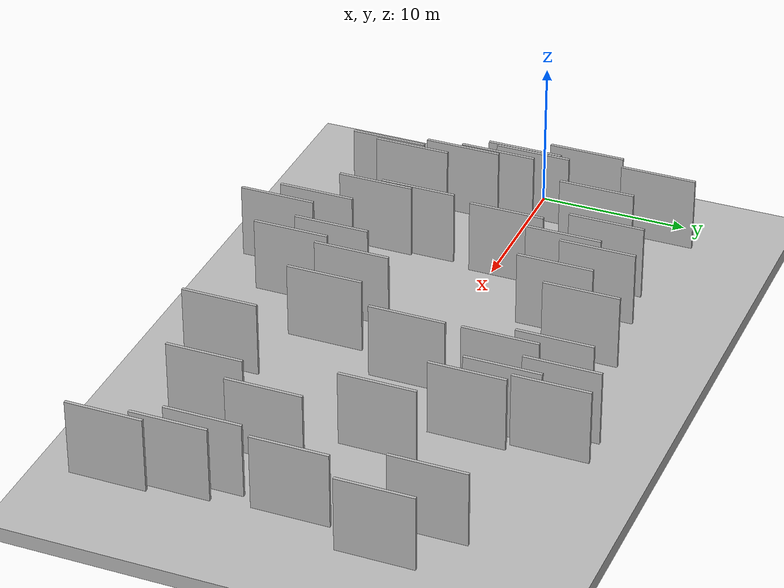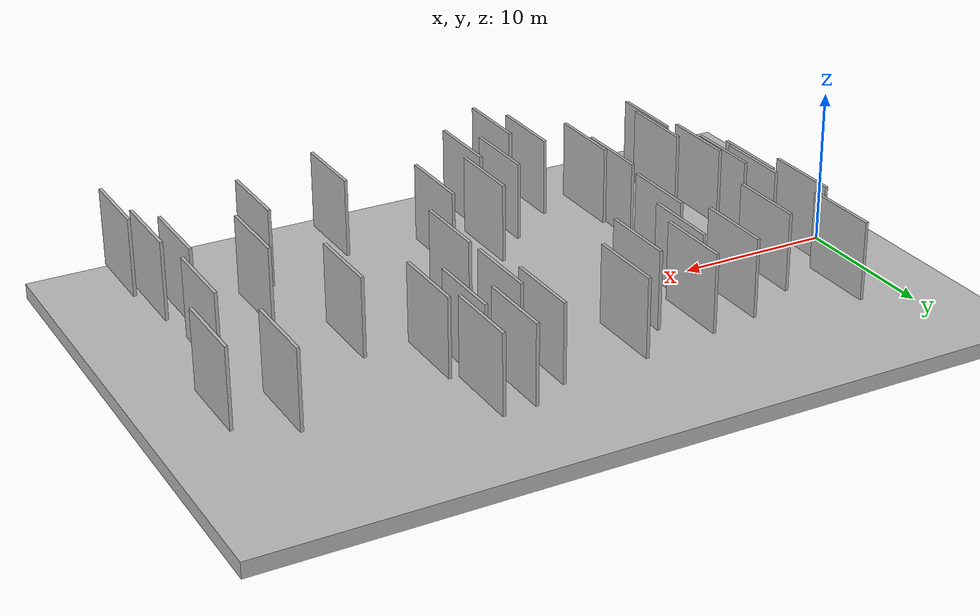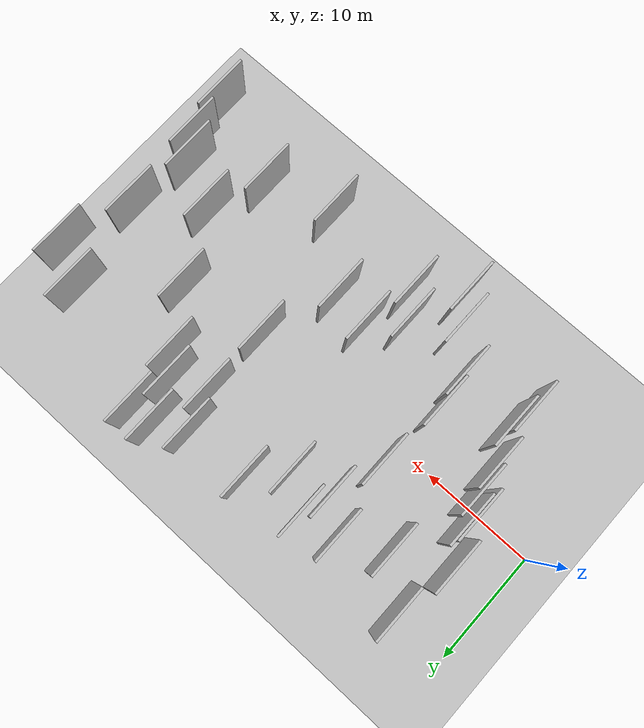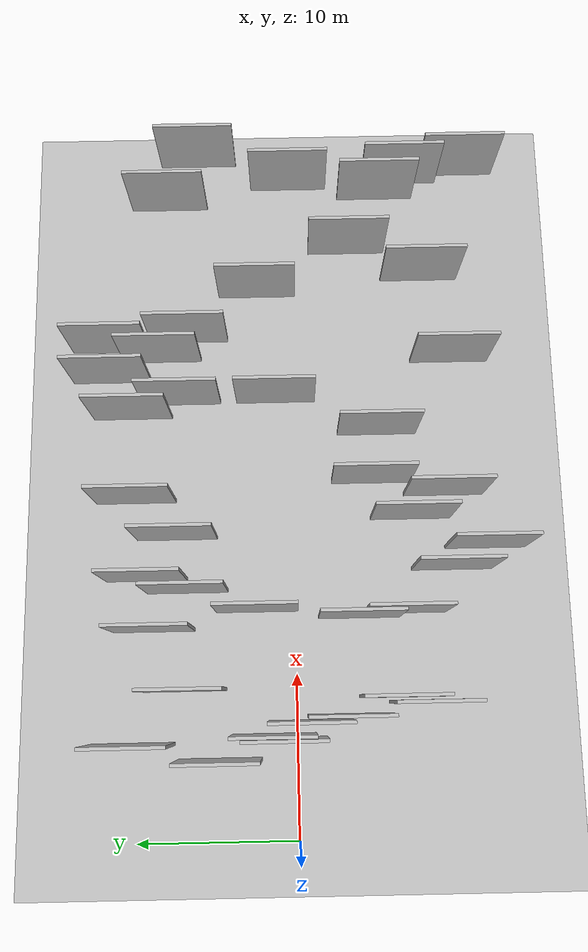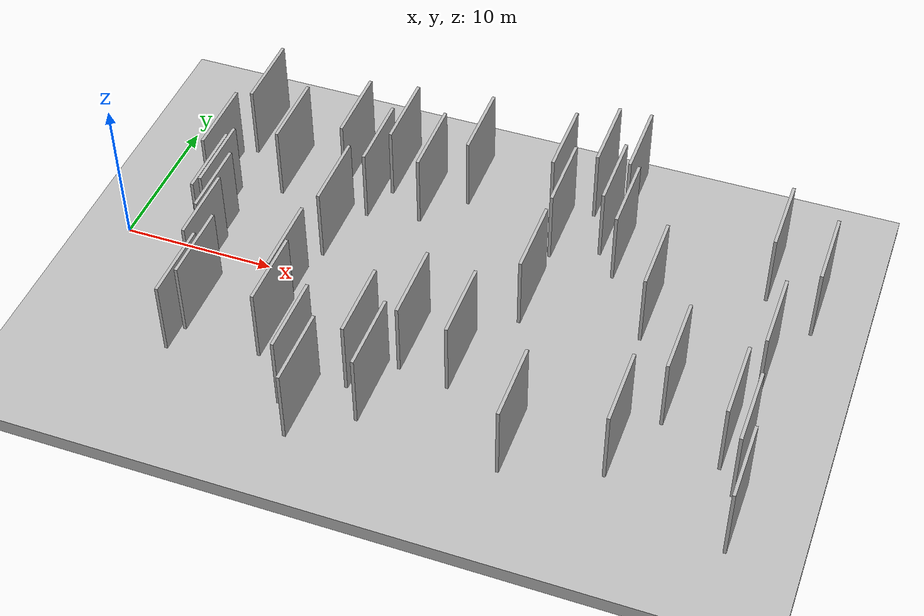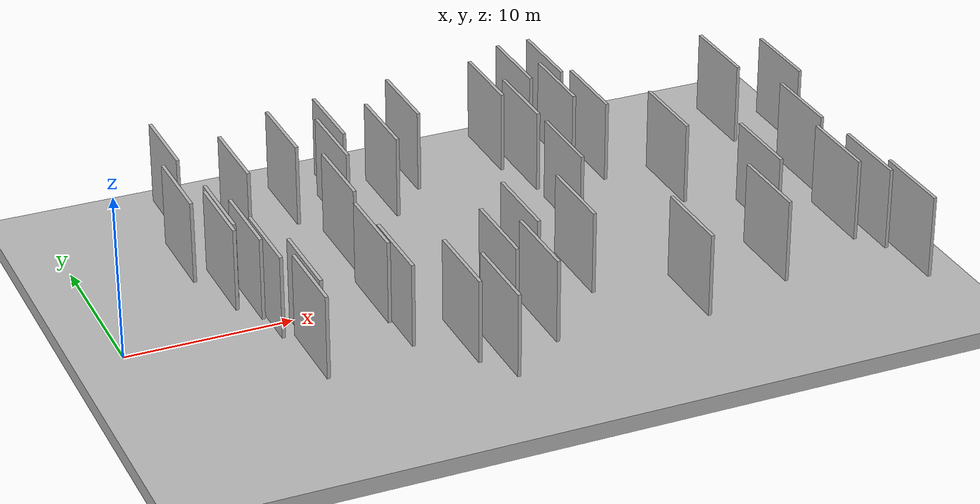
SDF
<?xml version="1.0" encoding="utf-8"?>

<sdf version="1.6">

   <world name="default">

      <gui fullscreen="0">

         <camera name="user_camera">

            <pose>-15 0 4.57585 0 0 0</pose>

            <view_controller>orbit</view_controller>

         </camera>

      </gui>

      <scene>

         <sky>

           <clouds>

             <speed>12</speed>

           </clouds>

         </sky>

         <ambient>0.4 0.4 0.4 1</ambient>

         <background>0.7 0.7 0.7 1</background>

         <shadows>1</shadows>

      </scene>

      <gravity>0 0 -9.8066</gravity>

      <magnetic_field>6e-06 2.3e-05 -4.2e-05</magnetic_field>

      <physics default="0" name="default_physics" type="ode">

         <ode>

            <solver>

               <type>quick</type>

               <iters>10</iters>

               <sor>1.0</sor>

               <use_dynamic_moi_rescaling>0</use_dynamic_moi_rescaling>

            </solver>

            <constraints>

               <cfm>0</cfm>

               <erp>0.2</erp>

               <contact_max_correcting_vel>100</contact_max_correcting_vel>

               <contact_surface_layer>0.001</contact_surface_layer>

            </constraints>

         </ode>

         <max_step_size>0.004</max_step_size>

         <real_time_factor>1</real_time_factor>

         <real_time_update_rate>250</real_time_update_rate>

      </physics>

      <light name="sun" type="directional">

         <cast_shadows>1</cast_shadows>

         <pose>0 0 10 0 0 0</pose>

         <diffuse>0.8 0.8 0.8 1</diffuse>

         <specular>0.2 0.2 0.2 1</specular>

         <attenuation>

            <range>1000</range>

            <constant>0.9</constant>

            <linear>0.01</linear>

            <quadratic>0.001</quadratic>

         </attenuation>

         <direction>-0.5 0.1 -0.9</direction>

      </light>

      <include>

         <name>ground_plane_1</name>

         <uri>model://HANNAS_ground_plane</uri>

         <pose>0 0 0  0 0 0</pose>

      </include>

      <include>

         <name>ground_plane_2</name>

         <uri>model://HANNAS_ground_plane</uri>

         <pose>100 0 0  0 0 0</pose>

      </include>

      <model name="HANNAS_wall_1">

         <static>1</static>

         <pose frame="">27.2792 1.0610 2.5 0.000000 0.000000 1.570796</pose>

         <link name="link">

            <pose frame="">0 0 2.50 0 0 0</pose>

            <collision name="collision">

               <geometry>

                  <box>

                     <size>5.00 0.2 5.00</size>

                  </box>

               </geometry>

               <max_contacts>10</max_contacts>

               <surface>

                  <contact>

                     <ode/>

                  </contact>

                  <bounce/>

                  <friction>

                     <torsional>

                        <ode/>

                     </torsional>

                     <ode/>

                  </friction>

               </surface>

            </collision>

            <visual name="visual">

               <cast_shadows>0</cast_shadows>

               <geometry>

                  <box>

                     <size>5.00 0.2 5.00</size>

                  </box>

               </geometry>

               <material>

                  <script>

                     <uri>model://HANNAS_wall/materials/scripts</uri>

                     <uri>model://HANNAS_wall/materials/textures</uri>

                     <name>vrc/HANNAS_wall</name>

                  </script>

               </material>

            </visual>

            <self_collide>0</self_collide>

            <enable_wind>0</enable_wind>

            <kinematic>0</kinematic>

         </link>

      </model>

      <model name="HANNAS_wall_2">

         <static>1</static>

         <pose frame="">43.1427 -11.2460 2.5 0.000000 0.000000 1.570796</pose>

         <link name="link">

            <pose frame="">0 0 2.50 0 0 0</pose>

            <collision name="collision">

               <geometry>

                  <box>

                     <size>5.00 0.2 5.00</size>

                  </box>

               </geometry>

               <max_contacts>10</max_contacts>

               <surface>

                  <contact>

                     <ode/>

                  </contact>

                  <bounce/>

                  <friction>

                     <torsional>

                        <ode/>

                     </torsional>

                     <ode/>

                  </friction>

               </surface>

            </collision>

            <visual name="visual">

               <cast_shadows>0</cast_shadows>

               <geometry>

                  <box>

                     <size>5.00 0.2 5.00</size>

                  </box>

               </geometry>

               <material>

                  <script>

                     <uri>model://HANNAS_wall/materials/scripts</uri>

                     <uri>model://HANNAS_wall/materials/textures</uri>

                     <name>vrc/HANNAS_wall</name>

                  </script>

               </material>

            </visual>

            <self_collide>0</self_collide>

            <enable_wind>0</enable_wind>

            <kinematic>0</kinematic>

         </link>

      </model>

      <model name="HANNAS_wall_3">

         <static>1</static>

         <pose frame="">31.4791 6.6042 2.5 0.000000 0.000000 1.570796</pose>

         <link name="link">

            <pose frame="">0 0 2.50 0 0 0</pose>

            <collision name="collision">

               <geometry>

                  <box>

                     <size>5.00 0.2 5.00</size>

                  </box>

               </geometry>

               <max_contacts>10</max_contacts>

               <surface>

                  <contact>

                     <ode/>

                  </contact>

                  <bounce/>

                  <friction>

                     <torsional>

                        <ode/>

                     </torsional>

                     <ode/>

                  </friction>

               </surface>

            </collision>

            <visual name="visual">

               <cast_shadows>0</cast_shadows>

               <geometry>

                  <box>

                     <size>5.00 0.2 5.00</size>

                  </box>

               </geometry>

               <material>

                  <script>

                     <uri>model://HANNAS_wall/materials/scripts</uri>

                     <uri>model://HANNAS_wall/materials/textures</uri>

                     <name>vrc/HANNAS_wall</name>

                  </script>

               </material>

            </visual>

            <self_collide>0</self_collide>

            <enable_wind>0</enable_wind>

            <kinematic>0</kinematic>

         </link>

      </model>

      <model name="HANNAS_wall_4">

         <static>1</static>

         <pose frame="">30.8617 11.6335 2.5 0.000000 0.000000 1.570796</pose>

         <link name="link">

            <pose frame="">0 0 2.50 0 0 0</pose>

            <collision name="collision">

               <geometry>

                  <box>

                     <size>5.00 0.2 5.00</size>

                  </box>

               </geometry>

               <max_contacts>10</max_contacts>

               <surface>

                  <contact>

                     <ode/>

                  </contact>

                  <bounce/>

                  <friction>

                     <torsional>

                        <ode/>

                     </torsional>

                     <ode/>

                  </friction>

               </surface>

            </collision>

            <visual name="visual">

               <cast_shadows>0</cast_shadows>

               <geometry>

                  <box>

                     <size>5.00 0.2 5.00</size>

                  </box>

               </geometry>

               <material>

                  <script>

                     <uri>model://HANNAS_wall/materials/scripts</uri>

                     <uri>model://HANNAS_wall/materials/textures</uri>

                     <name>vrc/HANNAS_wall</name>

                  </script>

               </material>

            </visual>

            <self_collide>0</self_collide>

            <enable_wind>0</enable_wind>

            <kinematic>0</kinematic>

         </link>

      </model>

      <model name="HANNAS_wall_5">

         <static>1</static>

         <pose frame="">44.0662 6.0179 2.5 0.000000 0.000000 1.570796</pose>

         <link name="link">

            <pose frame="">0 0 2.50 0 0 0</pose>

            <collision name="collision">

               <geometry>

                  <box>

                     <size>5.00 0.2 5.00</size>

                  </box>

               </geometry>

               <max_contacts>10</max_contacts>

               <surface>

                  <contact>

                     <ode/>

                  </contact>

                  <bounce/>

                  <friction>

                     <torsional>

                        <ode/>

                     </torsional>

                     <ode/>

                  </friction>

               </surface>

            </collision>

            <visual name="visual">

               <cast_shadows>0</cast_shadows>

               <geometry>

                  <box>

                     <size>5.00 0.2 5.00</size>

                  </box>

               </geometry>

               <material>

                  <script>

                     <uri>model://HANNAS_wall/materials/scripts</uri>

                     <uri>model://HANNAS_wall/materials/textures</uri>

                     <name>vrc/HANNAS_wall</name>

                  </script>

               </material>

            </visual>

            <self_collide>0</self_collide>

            <enable_wind>0</enable_wind>

            <kinematic>0</kinematic>

         </link>

      </model>

      <model name="HANNAS_wall_6">

         <static>1</static>

         <pose frame="">7.1622 -0.7424 2.5 0.000000 0.000000 1.570796</pose>

         <link name="link">

            <pose frame="">0 0 2.50 0 0 0</pose>

            <collision name="collision">

               <geometry>

                  <box>

                     <size>5.00 0.2 5.00</size>

                  </box>

               </geometry>

               <max_contacts>10</max_contacts>

               <surface>

                  <contact>

                     <ode/>

                  </contact>

                  <bounce/>

                  <friction>

                     <torsional>

                        <ode/>

                     </torsional>

                     <ode/>

                  </friction>

               </surface>

            </collision>

            <visual name="visual">

               <cast_shadows>0</cast_shadows>

               <geometry>

                  <box>

                     <size>5.00 0.2 5.00</size>

                  </box>

               </geometry>

               <material>

                  <script>

                     <uri>model://HANNAS_wall/materials/scripts</uri>

                     <uri>model://HANNAS_wall/materials/textures</uri>

                     <name>vrc/HANNAS_wall</name>

                  </script>

               </material>

            </visual>

            <self_collide>0</self_collide>

            <enable_wind>0</enable_wind>

            <kinematic>0</kinematic>

         </link>

      </model>

      <model name="HANNAS_wall_7">

         <static>1</static>

         <pose frame="">7.4784 -3.0683 2.5 0.000000 0.000000 1.570796</pose>

         <link name="link">

            <pose frame="">0 0 2.50 0 0 0</pose>

            <collision name="collision">

               <geometry>

                  <box>

                     <size>5.00 0.2 5.00</size>

                  </box>

               </geometry>

               <max_contacts>10</max_contacts>

               <surface>

                  <contact>

                     <ode/>

                  </contact>

                  <bounce/>

                  <friction>

                     <torsional>

                        <ode/>

                     </torsional>

                     <ode/>

                  </friction>

               </surface>

            </collision>

            <visual name="visual">

               <cast_shadows>0</cast_shadows>

               <geometry>

                  <box>

                     <size>5.00 0.2 5.00</size>

                  </box>

               </geometry>

               <material>

                  <script>

                     <uri>model://HANNAS_wall/materials/scripts</uri>

                     <uri>model://HANNAS_wall/materials/textures</uri>

                     <name>vrc/HANNAS_wall</name>

                  </script>

               </material>

            </visual>

            <self_collide>0</self_collide>

            <enable_wind>0</enable_wind>

            <kinematic>0</kinematic>

         </link>

      </model>

      <model name="HANNAS_wall_8">

         <static>1</static>

         <pose frame="">6.0004 9.8818 2.5 0.000000 0.000000 1.570796</pose>

         <link name="link">

            <pose frame="">0 0 2.50 0 0 0</pose>

            <collision name="collision">

               <geometry>

                  <box>

                     <size>5.00 0.2 5.00</size>

                  </box>

               </geometry>

               <max_contacts>10</max_contacts>

               <surface>

                  <contact>

                     <ode/>

                  </contact>

                  <bounce/>

                  <friction>

                     <torsional>

                        <ode/>

                     </torsional>

                     <ode/>

                  </friction>

               </surface>

            </collision>

            <visual name="visual">

               <cast_shadows>0</cast_shadows>

               <geometry>

                  <box>

                     <size>5.00 0.2 5.00</size>

                  </box>

               </geometry>

               <material>

                  <script>

                     <uri>model://HANNAS_wall/materials/scripts</uri>

                     <uri>model://HANNAS_wall/materials/textures</uri>

                     <name>vrc/HANNAS_wall</name>

                  </script>

               </material>

            </visual>

            <self_collide>0</self_collide>

            <enable_wind>0</enable_wind>

            <kinematic>0</kinematic>

         </link>

      </model>

      <model name="HANNAS_wall_9">

         <static>1</static>

         <pose frame="">28.7961 11.5513 2.5 0.000000 0.000000 1.570796</pose>

         <link name="link">

            <pose frame="">0 0 2.50 0 0 0</pose>

            <collision name="collision">

               <geometry>

                  <box>

                     <size>5.00 0.2 5.00</size>

                  </box>

               </geometry>

               <max_contacts>10</max_contacts>

               <surface>

                  <contact>

                     <ode/>

                  </contact>

                  <bounce/>

                  <friction>

                     <torsional>

                        <ode/>

                     </torsional>

                     <ode/>

                  </friction>

               </surface>

            </collision>

            <visual name="visual">

               <cast_shadows>0</cast_shadows>

               <geometry>

                  <box>

                     <size>5.00 0.2 5.00</size>

                  </box>

               </geometry>

               <material>

                  <script>

                     <uri>model://HANNAS_wall/materials/scripts</uri>

                     <uri>model://HANNAS_wall/materials/textures</uri>

                     <name>vrc/HANNAS_wall</name>

                  </script>

               </material>

            </visual>

            <self_collide>0</self_collide>

            <enable_wind>0</enable_wind>

            <kinematic>0</kinematic>

         </link>

      </model>

      <model name="HANNAS_wall_10">

         <static>1</static>

         <pose frame="">42.2487 0.0088 2.5 0.000000 0.000000 1.570796</pose>

         <link name="link">

            <pose frame="">0 0 2.50 0 0 0</pose>

            <collision name="collision">

               <geometry>

                  <box>

                     <size>5.00 0.2 5.00</size>

                  </box>

               </geometry>

               <max_contacts>10</max_contacts>

               <surface>

                  <contact>

                     <ode/>

                  </contact>

                  <bounce/>

                  <friction>

                     <torsional>

                        <ode/>

                     </torsional>

                     <ode/>

                  </friction>

               </surface>

            </collision>

            <visual name="visual">

               <cast_shadows>0</cast_shadows>

               <geometry>

                  <box>

                     <size>5.00 0.2 5.00</size>

                  </box>

               </geometry>

               <material>

                  <script>

                     <uri>model://HANNAS_wall/materials/scripts</uri>

                     <uri>model://HANNAS_wall/materials/textures</uri>

                     <name>vrc/HANNAS_wall</name>

                  </script>

               </material>

            </visual>

            <self_collide>0</self_collide>

            <enable_wind>0</enable_wind>

            <kinematic>0</kinematic>

         </link>

      </model>

      <model name="HANNAS_wall_11">

         <static>1</static>

         <pose frame="">5.0358 4.6578 2.5 0.000000 0.000000 1.570796</pose>

         <link name="link">

            <pose frame="">0 0 2.50 0 0 0</pose>

            <collision name="collision">

               <geometry>

                  <box>

                     <size>5.00 0.2 5.00</size>

                  </box>

               </geometry>

               <max_contacts>10</max_contacts>

               <surface>

                  <contact>

                     <ode/>

                  </contact>

                  <bounce/>

                  <friction>

                     <torsional>

                        <ode/>

                     </torsional>

                     <ode/>

                  </friction>

               </surface>

            </collision>

            <visual name="visual">

               <cast_shadows>0</cast_shadows>

               <geometry>

                  <box>

                     <size>5.00 0.2 5.00</size>

                  </box>

               </geometry>

               <material>

                  <script>

                     <uri>model://HANNAS_wall/materials/scripts</uri>

                     <uri>model://HANNAS_wall/materials/textures</uri>

                     <name>vrc/HANNAS_wall</name>

                  </script>

               </material>

            </visual>

            <self_collide>0</self_collide>

            <enable_wind>0</enable_wind>

            <kinematic>0</kinematic>

         </link>

      </model>

      <model name="HANNAS_wall_12">

         <static>1</static>

         <pose frame="">6.1834 0.7766 2.5 0.000000 0.000000 1.570796</pose>

         <link name="link">

            <pose frame="">0 0 2.50 0 0 0</pose>

            <collision name="collision">

               <geometry>

                  <box>

                     <size>5.00 0.2 5.00</size>

                  </box>

               </geometry>

               <max_contacts>10</max_contacts>

               <surface>

                  <contact>

                     <ode/>

                  </contact>

                  <bounce/>

                  <friction>

                     <torsional>

                        <ode/>

                     </torsional>

                     <ode/>

                  </friction>

               </surface>

            </collision>

            <visual name="visual">

               <cast_shadows>0</cast_shadows>

               <geometry>

                  <box>

                     <size>5.00 0.2 5.00</size>

                  </box>

               </geometry>

               <material>

                  <script>

                     <uri>model://HANNAS_wall/materials/scripts</uri>

                     <uri>model://HANNAS_wall/materials/textures</uri>

                     <name>vrc/HANNAS_wall</name>

                  </script>

               </material>

            </visual>

            <self_collide>0</self_collide>

            <enable_wind>0</enable_wind>

            <kinematic>0</kinematic>

         </link>

      </model>

      <model name="HANNAS_wall_13">

         <static>1</static>

         <pose frame="">30.1462 8.3202 2.5 0.000000 0.000000 1.570796</pose>

         <link name="link">

            <pose frame="">0 0 2.50 0 0 0</pose>

            <collision name="collision">

               <geometry>

                  <box>

                     <size>5.00 0.2 5.00</size>

                  </box>

               </geometry>

               <max_contacts>10</max_contacts>

               <surface>

                  <contact>

                     <ode/>

                  </contact>

                  <bounce/>

                  <friction>

                     <torsional>

                        <ode/>

                     </torsional>

                     <ode/>

                  </friction>

               </surface>

            </collision>

            <visual name="visual">

               <cast_shadows>0</cast_shadows>

               <geometry>

                  <box>

                     <size>5.00 0.2 5.00</size>

                  </box>

               </geometry>

               <material>

                  <script>

                     <uri>model://HANNAS_wall/materials/scripts</uri>

                     <uri>model://HANNAS_wall/materials/textures</uri>

                     <name>vrc/HANNAS_wall</name>

                  </script>

               </material>

            </visual>

            <self_collide>0</self_collide>

            <enable_wind>0</enable_wind>

            <kinematic>0</kinematic>

         </link>

      </model>

      <model name="HANNAS_wall_14">

         <static>1</static>

         <pose frame="">29.8184 -10.1826 2.5 0.000000 0.000000 1.570796</pose>

         <link name="link">

            <pose frame="">0 0 2.50 0 0 0</pose>

            <collision name="collision">

               <geometry>

                  <box>

                     <size>5.00 0.2 5.00</size>

                  </box>

               </geometry>

               <max_contacts>10</max_contacts>

               <surface>

                  <contact>

                     <ode/>

                  </contact>

                  <bounce/>

                  <friction>

                     <torsional>

                        <ode/>

                     </torsional>

                     <ode/>

                  </friction>

               </surface>

            </collision>

            <visual name="visual">

               <cast_shadows>0</cast_shadows>

               <geometry>

                  <box>

                     <size>5.00 0.2 5.00</size>

                  </box>

               </geometry>

               <material>

                  <script>

                     <uri>model://HANNAS_wall/materials/scripts</uri>

                     <uri>model://HANNAS_wall/materials/textures</uri>

                     <name>vrc/HANNAS_wall</name>

                  </script>

               </material>

            </visual>

            <self_collide>0</self_collide>

            <enable_wind>0</enable_wind>

            <kinematic>0</kinematic>

         </link>

      </model>

      <model name="HANNAS_wall_15">

         <static>1</static>

         <pose frame="">15.8892 9.1975 2.5 0.000000 0.000000 1.570796</pose>

         <link name="link">

            <pose frame="">0 0 2.50 0 0 0</pose>

            <collision name="collision">

               <geometry>

                  <box>

                     <size>5.00 0.2 5.00</size>

                  </box>

               </geometry>

               <max_contacts>10</max_contacts>

               <surface>

                  <contact>

                     <ode/>

                  </contact>

                  <bounce/>

                  <friction>

                     <torsional>

                        <ode/>

                     </torsional>

                     <ode/>

                  </friction>

               </surface>

            </collision>

            <visual name="visual">

               <cast_shadows>0</cast_shadows>

               <geometry>

                  <box>

                     <size>5.00 0.2 5.00</size>

                  </box>

               </geometry>

               <material>

                  <script>

                     <uri>model://HANNAS_wall/materials/scripts</uri>

                     <uri>model://HANNAS_wall/materials/textures</uri>

                     <name>vrc/HANNAS_wall</name>

                  </script>

               </material>

            </visual>

            <self_collide>0</self_collide>

            <enable_wind>0</enable_wind>

            <kinematic>0</kinematic>

         </link>

      </model>

      <model name="HANNAS_wall_16">

         <static>1</static>

         <pose frame="">34.5386 2.1750 2.5 0.000000 0.000000 1.570796</pose>

         <link name="link">

            <pose frame="">0 0 2.50 0 0 0</pose>

            <collision name="collision">

               <geometry>

                  <box>

                     <size>5.00 0.2 5.00</size>

                  </box>

               </geometry>

               <max_contacts>10</max_contacts>

               <surface>

                  <contact>

                     <ode/>

                  </contact>

                  <bounce/>

                  <friction>

                     <torsional>

                        <ode/>

                     </torsional>

                     <ode/>

                  </friction>

               </surface>

            </collision>

            <visual name="visual">

               <cast_shadows>0</cast_shadows>

               <geometry>

                  <box>

                     <size>5.00 0.2 5.00</size>

                  </box>

               </geometry>

               <material>

                  <script>

                     <uri>model://HANNAS_wall/materials/scripts</uri>

                     <uri>model://HANNAS_wall/materials/textures</uri>

                     <name>vrc/HANNAS_wall</name>

                  </script>

               </material>

            </visual>

            <self_collide>0</self_collide>

            <enable_wind>0</enable_wind>

            <kinematic>0</kinematic>

         </link>

      </model>

      <model name="HANNAS_wall_17">

         <static>1</static>

         <pose frame="">13.6365 -6.6961 2.5 0.000000 0.000000 1.570796</pose>

         <link name="link">

            <pose frame="">0 0 2.50 0 0 0</pose>

            <collision name="collision">

               <geometry>

                  <box>

                     <size>5.00 0.2 5.00</size>

                  </box>

               </geometry>

               <max_contacts>10</max_contacts>

               <surface>

                  <contact>

                     <ode/>

                  </contact>

                  <bounce/>

                  <friction>

                     <torsional>

                        <ode/>

                     </torsional>

                     <ode/>

                  </friction>

               </surface>

            </collision>

            <visual name="visual">

               <cast_shadows>0</cast_shadows>

               <geometry>

                  <box>

                     <size>5.00 0.2 5.00</size>

                  </box>

               </geometry>

               <material>

                  <script>

                     <uri>model://HANNAS_wall/materials/scripts</uri>

                     <uri>model://HANNAS_wall/materials/textures</uri>

                     <name>vrc/HANNAS_wall</name>

                  </script>

               </material>

            </visual>

            <self_collide>0</self_collide>

            <enable_wind>0</enable_wind>

            <kinematic>0</kinematic>

         </link>

      </model>

      <model name="HANNAS_wall_18">

         <static>1</static>

         <pose frame="">15.1044 6.6599 2.5 0.000000 0.000000 1.570796</pose>

         <link name="link">

            <pose frame="">0 0 2.50 0 0 0</pose>

            <collision name="collision">

               <geometry>

                  <box>

                     <size>5.00 0.2 5.00</size>

                  </box>

               </geometry>

               <max_contacts>10</max_contacts>

               <surface>

                  <contact>

                     <ode/>

                  </contact>

                  <bounce/>

                  <friction>

                     <torsional>

                        <ode/>

                     </torsional>

                     <ode/>

                  </friction>

               </surface>

            </collision>

            <visual name="visual">

               <cast_shadows>0</cast_shadows>

               <geometry>

                  <box>

                     <size>5.00 0.2 5.00</size>

                  </box>

               </geometry>

               <material>

                  <script>

                     <uri>model://HANNAS_wall/materials/scripts</uri>

                     <uri>model://HANNAS_wall/materials/textures</uri>

                     <name>vrc/HANNAS_wall</name>

                  </script>

               </material>

            </visual>

            <self_collide>0</self_collide>

            <enable_wind>0</enable_wind>

            <kinematic>0</kinematic>

         </link>

      </model>

      <model name="HANNAS_wall_19">

         <static>1</static>

         <pose frame="">20.9788 -9.3993 2.5 0.000000 0.000000 1.570796</pose>

         <link name="link">

            <pose frame="">0 0 2.50 0 0 0</pose>

            <collision name="collision">

               <geometry>

                  <box>

                     <size>5.00 0.2 5.00</size>

                  </box>

               </geometry>

               <max_contacts>10</max_contacts>

               <surface>

                  <contact>

                     <ode/>

                  </contact>

                  <bounce/>

                  <friction>

                     <torsional>

                        <ode/>

                     </torsional>

                     <ode/>

                  </friction>

               </surface>

            </collision>

            <visual name="visual">

               <cast_shadows>0</cast_shadows>

               <geometry>

                  <box>

                     <size>5.00 0.2 5.00</size>

                  </box>

               </geometry>

               <material>

                  <script>

                     <uri>model://HANNAS_wall/materials/scripts</uri>

                     <uri>model://HANNAS_wall/materials/textures</uri>

                     <name>vrc/HANNAS_wall</name>

                  </script>

               </material>

            </visual>

            <self_collide>0</self_collide>

            <enable_wind>0</enable_wind>

            <kinematic>0</kinematic>

         </link>

      </model>

      <model name="HANNAS_wall_20">

         <static>1</static>

         <pose frame="">20.8145 9.8935 2.5 0.000000 0.000000 1.570796</pose>

         <link name="link">

            <pose frame="">0 0 2.50 0 0 0</pose>

            <collision name="collision">

               <geometry>

                  <box>

                     <size>5.00 0.2 5.00</size>

                  </box>

               </geometry>

               <max_contacts>10</max_contacts>

               <surface>

                  <contact>

                     <ode/>

                  </contact>

                  <bounce/>

                  <friction>

                     <torsional>

                        <ode/>

                     </torsional>

                     <ode/>

                  </friction>

               </surface>

            </collision>

            <visual name="visual">

               <cast_shadows>0</cast_shadows>

               <geometry>

                  <box>

                     <size>5.00 0.2 5.00</size>

                  </box>

               </geometry>

               <material>

                  <script>

                     <uri>model://HANNAS_wall/materials/scripts</uri>

                     <uri>model://HANNAS_wall/materials/textures</uri>

                     <name>vrc/HANNAS_wall</name>

                  </script>

               </material>

            </visual>

            <self_collide>0</self_collide>

            <enable_wind>0</enable_wind>

            <kinematic>0</kinematic>

         </link>

      </model>

      <model name="HANNAS_wall_21">

         <static>1</static>

         <pose frame="">27.2476 7.0687 2.5 0.000000 0.000000 1.570796</pose>

         <link name="link">

            <pose frame="">0 0 2.50 0 0 0</pose>

            <collision name="collision">

               <geometry>

                  <box>

                     <size>5.00 0.2 5.00</size>

                  </box>

               </geometry>

               <max_contacts>10</max_contacts>

               <surface>

                  <contact>

                     <ode/>

                  </contact>

                  <bounce/>

                  <friction>

                     <torsional>

                        <ode/>

                     </torsional>

                     <ode/>

                  </friction>

               </surface>

            </collision>

            <visual name="visual">

               <cast_shadows>0</cast_shadows>

               <geometry>

                  <box>

                     <size>5.00 0.2 5.00</size>

                  </box>

               </geometry>

               <material>

                  <script>

                     <uri>model://HANNAS_wall/materials/scripts</uri>

                     <uri>model://HANNAS_wall/materials/textures</uri>

                     <name>vrc/HANNAS_wall</name>

                  </script>

               </material>

            </visual>

            <self_collide>0</self_collide>

            <enable_wind>0</enable_wind>

            <kinematic>0</kinematic>

         </link>

      </model>

      <model name="HANNAS_wall_22">

         <static>1</static>

         <pose frame="">16.2547 -9.7006 2.5 0.000000 0.000000 1.570796</pose>

         <link name="link">

            <pose frame="">0 0 2.50 0 0 0</pose>

            <collision name="collision">

               <geometry>

                  <box>

                     <size>5.00 0.2 5.00</size>

                  </box>

               </geometry>

               <max_contacts>10</max_contacts>

               <surface>

                  <contact>

                     <ode/>

                  </contact>

                  <bounce/>

                  <friction>

                     <torsional>

                        <ode/>

                     </torsional>

                     <ode/>

                  </friction>

               </surface>

            </collision>

            <visual name="visual">

               <cast_shadows>0</cast_shadows>

               <geometry>

                  <box>

                     <size>5.00 0.2 5.00</size>

                  </box>

               </geometry>

               <material>

                  <script>

                     <uri>model://HANNAS_wall/materials/scripts</uri>

                     <uri>model://HANNAS_wall/materials/textures</uri>

                     <name>vrc/HANNAS_wall</name>

                  </script>

               </material>

            </visual>

            <self_collide>0</self_collide>

            <enable_wind>0</enable_wind>

            <kinematic>0</kinematic>

         </link>

      </model>

      <model name="HANNAS_wall_23">

         <static>1</static>

         <pose frame="">6.4073 1.4217 2.5 0.000000 0.000000 1.570796</pose>

         <link name="link">

            <pose frame="">0 0 2.50 0 0 0</pose>

            <collision name="collision">

               <geometry>

                  <box>

                     <size>5.00 0.2 5.00</size>

                  </box>

               </geometry>

               <max_contacts>10</max_contacts>

               <surface>

                  <contact>

                     <ode/>

                  </contact>

                  <bounce/>

                  <friction>

                     <torsional>

                        <ode/>

                     </torsional>

                     <ode/>

                  </friction>

               </surface>

            </collision>

            <visual name="visual">

               <cast_shadows>0</cast_shadows>

               <geometry>

                  <box>

                     <size>5.00 0.2 5.00</size>

                  </box>

               </geometry>

               <material>

                  <script>

                     <uri>model://HANNAS_wall/materials/scripts</uri>

                     <uri>model://HANNAS_wall/materials/textures</uri>

                     <name>vrc/HANNAS_wall</name>

                  </script>

               </material>

            </visual>

            <self_collide>0</self_collide>

            <enable_wind>0</enable_wind>

            <kinematic>0</kinematic>

         </link>

      </model>

      <model name="HANNAS_wall_24">

         <static>1</static>

         <pose frame="">18.4427 7.3277 2.5 0.000000 0.000000 1.570796</pose>

         <link name="link">

            <pose frame="">0 0 2.50 0 0 0</pose>

            <collision name="collision">

               <geometry>

                  <box>

                     <size>5.00 0.2 5.00</size>

                  </box>

               </geometry>

               <max_contacts>10</max_contacts>

               <surface>

                  <contact>

                     <ode/>

                  </contact>

                  <bounce/>

                  <friction>

                     <torsional>

                        <ode/>

                     </torsional>

                     <ode/>

                  </friction>

               </surface>

            </collision>

            <visual name="visual">

               <cast_shadows>0</cast_shadows>

               <geometry>

                  <box>

                     <size>5.00 0.2 5.00</size>

                  </box>

               </geometry>

               <material>

                  <script>

                     <uri>model://HANNAS_wall/materials/scripts</uri>

                     <uri>model://HANNAS_wall/materials/textures</uri>

                     <name>vrc/HANNAS_wall</name>

                  </script>

               </material>

            </visual>

            <self_collide>0</self_collide>

            <enable_wind>0</enable_wind>

            <kinematic>0</kinematic>

         </link>

      </model>

      <model name="HANNAS_wall_25">

         <static>1</static>

         <pose frame="">17.5758 -11.8490 2.5 0.000000 0.000000 1.570796</pose>

         <link name="link">

            <pose frame="">0 0 2.50 0 0 0</pose>

            <collision name="collision">

               <geometry>

                  <box>

                     <size>5.00 0.2 5.00</size>

                  </box>

               </geometry>

               <max_contacts>10</max_contacts>

               <surface>

                  <contact>

                     <ode/>

                  </contact>

                  <bounce/>

                  <friction>

                     <torsional>

                        <ode/>

                     </torsional>

                     <ode/>

                  </friction>

               </surface>

            </collision>

            <visual name="visual">

               <cast_shadows>0</cast_shadows>

               <geometry>

                  <box>

                     <size>5.00 0.2 5.00</size>

                  </box>

               </geometry>

               <material>

                  <script>

                     <uri>model://HANNAS_wall/materials/scripts</uri>

                     <uri>model://HANNAS_wall/materials/textures</uri>

                     <name>vrc/HANNAS_wall</name>

                  </script>

               </material>

            </visual>

            <self_collide>0</self_collide>

            <enable_wind>0</enable_wind>

            <kinematic>0</kinematic>

         </link>

      </model>

      <model name="HANNAS_wall_26">

         <static>1</static>

         <pose frame="">42.5870 -7.4135 2.5 0.000000 0.000000 1.570796</pose>

         <link name="link">

            <pose frame="">0 0 2.50 0 0 0</pose>

            <collision name="collision">

               <geometry>

                  <box>

                     <size>5.00 0.2 5.00</size>

                  </box>

               </geometry>

               <max_contacts>10</max_contacts>

               <surface>

                  <contact>

                     <ode/>

                  </contact>

                  <bounce/>

                  <friction>

                     <torsional>

                        <ode/>

                     </torsional>

                     <ode/>

                  </friction>

               </surface>

            </collision>

            <visual name="visual">

               <cast_shadows>0</cast_shadows>

               <geometry>

                  <box>

                     <size>5.00 0.2 5.00</size>

                  </box>

               </geometry>

               <material>

                  <script>

                     <uri>model://HANNAS_wall/materials/scripts</uri>

                     <uri>model://HANNAS_wall/materials/textures</uri>

                     <name>vrc/HANNAS_wall</name>

                  </script>

               </material>

            </visual>

            <self_collide>0</self_collide>

            <enable_wind>0</enable_wind>

            <kinematic>0</kinematic>

         </link>

      </model>

      <model name="HANNAS_wall_27">

         <static>1</static>

         <pose frame="">12.7617 8.6963 2.5 0.000000 0.000000 1.570796</pose>

         <link name="link">

            <pose frame="">0 0 2.50 0 0 0</pose>

            <collision name="collision">

               <geometry>

                  <box>

                     <size>5.00 0.2 5.00</size>

                  </box>

               </geometry>

               <max_contacts>10</max_contacts>

               <surface>

                  <contact>

                     <ode/>

                  </contact>

                  <bounce/>

                  <friction>

                     <torsional>

                        <ode/>

                     </torsional>

                     <ode/>

                  </friction>

               </surface>

            </collision>

            <visual name="visual">

               <cast_shadows>0</cast_shadows>

               <geometry>

                  <box>

                     <size>5.00 0.2 5.00</size>

                  </box>

               </geometry>

               <material>

                  <script>

                     <uri>model://HANNAS_wall/materials/scripts</uri>

                     <uri>model://HANNAS_wall/materials/textures</uri>

                     <name>vrc/HANNAS_wall</name>

                  </script>

               </material>

            </visual>

            <self_collide>0</self_collide>

            <enable_wind>0</enable_wind>

            <kinematic>0</kinematic>

         </link>

      </model>

      <model name="HANNAS_wall_28">

         <static>1</static>

         <pose frame="">41.4596 -5.7765 2.5 0.000000 0.000000 1.570796</pose>

         <link name="link">

            <pose frame="">0 0 2.50 0 0 0</pose>

            <collision name="collision">

               <geometry>

                  <box>

                     <size>5.00 0.2 5.00</size>

                  </box>

               </geometry>

               <max_contacts>10</max_contacts>

               <surface>

                  <contact>

                     <ode/>

                  </contact>

                  <bounce/>

                  <friction>

                     <torsional>

                        <ode/>

                     </torsional>

                     <ode/>

                  </friction>

               </surface>

            </collision>

            <visual name="visual">

               <cast_shadows>0</cast_shadows>

               <geometry>

                  <box>

                     <size>5.00 0.2 5.00</size>

                  </box>

               </geometry>

               <material>

                  <script>

                     <uri>model://HANNAS_wall/materials/scripts</uri>

                     <uri>model://HANNAS_wall/materials/textures</uri>

                     <name>vrc/HANNAS_wall</name>

                  </script>

               </material>

            </visual>

            <self_collide>0</self_collide>

            <enable_wind>0</enable_wind>

            <kinematic>0</kinematic>

         </link>

      </model>

      <model name="HANNAS_wall_29">

         <static>1</static>

         <pose frame="">37.5251 -3.7372 2.5 0.000000 0.000000 1.570796</pose>

         <link name="link">

            <pose frame="">0 0 2.50 0 0 0</pose>

            <collision name="collision">

               <geometry>

                  <box>

                     <size>5.00 0.2 5.00</size>

                  </box>

               </geometry>

               <max_contacts>10</max_contacts>

               <surface>

                  <contact>

                     <ode/>

                  </contact>

                  <bounce/>

                  <friction>

                     <torsional>

                        <ode/>

                     </torsional>

                     <ode/>

                  </friction>

               </surface>

            </collision>

            <visual name="visual">

               <cast_shadows>0</cast_shadows>

               <geometry>

                  <box>

                     <size>5.00 0.2 5.00</size>

                  </box>

               </geometry>

               <material>

                  <script>

                     <uri>model://HANNAS_wall/materials/scripts</uri>

                     <uri>model://HANNAS_wall/materials/textures</uri>

                     <name>vrc/HANNAS_wall</name>

                  </script>

               </material>

            </visual>

            <self_collide>0</self_collide>

            <enable_wind>0</enable_wind>

            <kinematic>0</kinematic>

         </link>

      </model>

      <model name="HANNAS_wall_30">

         <static>1</static>

         <pose frame="">9.1485 6.7759 2.5 0.000000 0.000000 1.570796</pose>

         <link name="link">

            <pose frame="">0 0 2.50 0 0 0</pose>

            <collision name="collision">

               <geometry>

                  <box>

                     <size>5.00 0.2 5.00</size>

                  </box>

               </geometry>

               <max_contacts>10</max_contacts>

               <surface>

                  <contact>

                     <ode/>

                  </contact>

                  <bounce/>

                  <friction>

                     <torsional>

                        <ode/>

                     </torsional>

                     <ode/>

                  </friction>

               </surface>

            </collision>

            <visual name="visual">

               <cast_shadows>0</cast_shadows>

               <geometry>

                  <box>

                     <size>5.00 0.2 5.00</size>

                  </box>

               </geometry>

               <material>

                  <script>

                     <uri>model://HANNAS_wall/materials/scripts</uri>

                     <uri>model://HANNAS_wall/materials/textures</uri>

                     <name>vrc/HANNAS_wall</name>

                  </script>

               </material>

            </visual>

            <self_collide>0</self_collide>

            <enable_wind>0</enable_wind>

            <kinematic>0</kinematic>

         </link>

      </model>

      <model name="HANNAS_wall_31">

         <static>1</static>

         <pose frame="">40.8838 7.9274 2.5 0.000000 0.000000 1.570796</pose>

         <link name="link">

            <pose frame="">0 0 2.50 0 0 0</pose>

            <collision name="collision">

               <geometry>

                  <box>

                     <size>5.00 0.2 5.00</size>

                  </box>

               </geometry>

               <max_contacts>10</max_contacts>

               <surface>

                  <contact>

                     <ode/>

                  </contact>

                  <bounce/>

                  <friction>

                     <torsional>

                        <ode/>

                     </torsional>

                     <ode/>

                  </friction>

               </surface>

            </collision>

            <visual name="visual">

               <cast_shadows>0</cast_shadows>

               <geometry>

                  <box>

                     <size>5.00 0.2 5.00</size>

                  </box>

               </geometry>

               <material>

                  <script>

                     <uri>model://HANNAS_wall/materials/scripts</uri>

                     <uri>model://HANNAS_wall/materials/textures</uri>

                     <name>vrc/HANNAS_wall</name>

                  </script>

               </material>

            </visual>

            <self_collide>0</self_collide>

            <enable_wind>0</enable_wind>

            <kinematic>0</kinematic>

         </link>

      </model>

      <model name="HANNAS_wall_32">

         <static>1</static>

         <pose frame="">19.4961 -7.2691 2.5 0.000000 0.000000 1.570796</pose>

         <link name="link">

            <pose frame="">0 0 2.50 0 0 0</pose>

            <collision name="collision">

               <geometry>

                  <box>

                     <size>5.00 0.2 5.00</size>

                  </box>

               </geometry>

               <max_contacts>10</max_contacts>

               <surface>

                  <contact>

                     <ode/>

                  </contact>

                  <bounce/>

                  <friction>

                     <torsional>

                        <ode/>

                     </torsional>

                     <ode/>

                  </friction>

               </surface>

            </collision>

            <visual name="visual">

               <cast_shadows>0</cast_shadows>

               <geometry>

                  <box>

                     <size>5.00 0.2 5.00</size>

                  </box>

               </geometry>

               <material>

                  <script>

                     <uri>model://HANNAS_wall/materials/scripts</uri>

                     <uri>model://HANNAS_wall/materials/textures</uri>

                     <name>vrc/HANNAS_wall</name>

                  </script>

               </material>

            </visual>

            <self_collide>0</self_collide>

            <enable_wind>0</enable_wind>

            <kinematic>0</kinematic>

         </link>

      </model>

      <model name="HANNAS_wall_33">

         <static>1</static>

         <pose frame="">25.0246 -5.3326 2.5 0.000000 0.000000 1.570796</pose>

         <link name="link">

            <pose frame="">0 0 2.50 0 0 0</pose>

            <collision name="collision">

               <geometry>

                  <box>

                     <size>5.00 0.2 5.00</size>

                  </box>

               </geometry>

               <max_contacts>10</max_contacts>

               <surface>

                  <contact>

                     <ode/>

                  </contact>

                  <bounce/>

                  <friction>

                     <torsional>

                        <ode/>

                     </torsional>

                     <ode/>

                  </friction>

               </surface>

            </collision>

            <visual name="visual">

               <cast_shadows>0</cast_shadows>

               <geometry>

                  <box>

                     <size>5.00 0.2 5.00</size>

                  </box>

               </geometry>

               <material>

                  <script>

                     <uri>model://HANNAS_wall/materials/scripts</uri>

                     <uri>model://HANNAS_wall/materials/textures</uri>

                     <name>vrc/HANNAS_wall</name>

                  </script>

               </material>

            </visual>

            <self_collide>0</self_collide>

            <enable_wind>0</enable_wind>

            <kinematic>0</kinematic>

         </link>

      </model>

      <model name="HANNAS_wall_34">

         <static>1</static>

         <pose frame="">8.5705 -6.2254 2.5 0.000000 0.000000 1.570796</pose>

         <link name="link">

            <pose frame="">0 0 2.50 0 0 0</pose>

            <collision name="collision">

               <geometry>

                  <box>

                     <size>5.00 0.2 5.00</size>

                  </box>

               </geometry>

               <max_contacts>10</max_contacts>

               <surface>

                  <contact>

                     <ode/>

                  </contact>

                  <bounce/>

                  <friction>

                     <torsional>

                        <ode/>

                     </torsional>

                     <ode/>

                  </friction>

               </surface>

            </collision>

            <visual name="visual">

               <cast_shadows>0</cast_shadows>

               <geometry>

                  <box>

                     <size>5.00 0.2 5.00</size>

                  </box>

               </geometry>

               <material>

                  <script>

                     <uri>model://HANNAS_wall/materials/scripts</uri>

                     <uri>model://HANNAS_wall/materials/textures</uri>

                     <name>vrc/HANNAS_wall</name>

                  </script>

               </material>

            </visual>

            <self_collide>0</self_collide>

            <enable_wind>0</enable_wind>

            <kinematic>0</kinematic>

         </link>

      </model>

      <model name="HANNAS_wall_35">

         <static>1</static>

         <pose frame="">35.5330 -8.4754 2.5 0.000000 0.000000 1.570796</pose>

         <link name="link">

            <pose frame="">0 0 2.50 0 0 0</pose>

            <collision name="collision">

               <geometry>

                  <box>

                     <size>5.00 0.2 5.00</size>

                  </box>

               </geometry>

               <max_contacts>10</max_contacts>

               <surface>

                  <contact>

                     <ode/>

                  </contact>

                  <bounce/>

                  <friction>

                     <torsional>

                        <ode/>

                     </torsional>

                     <ode/>

                  </friction>

               </surface>

            </collision>

            <visual name="visual">

               <cast_shadows>0</cast_shadows>

               <geometry>

                  <box>

                     <size>5.00 0.2 5.00</size>

                  </box>

               </geometry>

               <material>

                  <script>

                     <uri>model://HANNAS_wall/materials/scripts</uri>

                     <uri>model://HANNAS_wall/materials/textures</uri>

                     <name>vrc/HANNAS_wall</name>

                  </script>

               </material>

            </visual>

            <self_collide>0</self_collide>

            <enable_wind>0</enable_wind>

            <kinematic>0</kinematic>

         </link>

      </model>

      <model name="HANNAS_wall_36">

         <static>1</static>

         <pose frame="">8.2066 -8.0074 2.5 0.000000 0.000000 1.570796</pose>

         <link name="link">

            <pose frame="">0 0 2.50 0 0 0</pose>

            <collision name="collision">

               <geometry>

                  <box>

                     <size>5.00 0.2 5.00</size>

                  </box>

               </geometry>

               <max_contacts>10</max_contacts>

               <surface>

                  <contact>

                     <ode/>

                  </contact>

                  <bounce/>

                  <friction>

                     <torsional>

                        <ode/>

                     </torsional>

                     <ode/>

                  </friction>

               </surface>

            </collision>

            <visual name="visual">

               <cast_shadows>0</cast_shadows>

               <geometry>

                  <box>

                     <size>5.00 0.2 5.00</size>

                  </box>

               </geometry>

               <material>

                  <script>

                     <uri>model://HANNAS_wall/materials/scripts</uri>

                     <uri>model://HANNAS_wall/materials/textures</uri>

                     <name>vrc/HANNAS_wall</name>

                  </script>

               </material>

            </visual>

            <self_collide>0</self_collide>

            <enable_wind>0</enable_wind>

            <kinematic>0</kinematic>

         </link>

      </model>

      <model name="HANNAS_wall_37">

         <static>1</static>

         <pose frame="">21.8526 -4.8742 2.5 0.000000 0.000000 1.570796</pose>

         <link name="link">

            <pose frame="">0 0 2.50 0 0 0</pose>

            <collision name="collision">

               <geometry>

                  <box>

                     <size>5.00 0.2 5.00</size>

                  </box>

               </geometry>

               <max_contacts>10</max_contacts>

               <surface>

                  <contact>

                     <ode/>

                  </contact>

                  <bounce/>

                  <friction>

                     <torsional>

                        <ode/>

                     </torsional>

                     <ode/>

                  </friction>

               </surface>

            </collision>

            <visual name="visual">

               <cast_shadows>0</cast_shadows>

               <geometry>

                  <box>

                     <size>5.00 0.2 5.00</size>

                  </box>

               </geometry>

               <material>

                  <script>

                     <uri>model://HANNAS_wall/materials/scripts</uri>

                     <uri>model://HANNAS_wall/materials/textures</uri>

                     <name>vrc/HANNAS_wall</name>

                  </script>

               </material>

            </visual>

            <self_collide>0</self_collide>

            <enable_wind>0</enable_wind>

            <kinematic>0</kinematic>

         </link>

      </model>

      <model name="HANNAS_wall_38">

         <static>1</static>

         <pose frame="">26.3306 10.1865 2.5 0.000000 0.000000 1.570796</pose>

         <link name="link">

            <pose frame="">0 0 2.50 0 0 0</pose>

            <collision name="collision">

               <geometry>

                  <box>

                     <size>5.00 0.2 5.00</size>

                  </box>

               </geometry>

               <max_contacts>10</max_contacts>

               <surface>

                  <contact>

                     <ode/>

                  </contact>

                  <bounce/>

                  <friction>

                     <torsional>

                        <ode/>

                     </torsional>

                     <ode/>

                  </friction>

               </surface>

            </collision>

            <visual name="visual">

               <cast_shadows>0</cast_shadows>

               <geometry>

                  <box>

                     <size>5.00 0.2 5.00</size>

                  </box>

               </geometry>

               <material>

                  <script>

                     <uri>model://HANNAS_wall/materials/scripts</uri>

                     <uri>model://HANNAS_wall/materials/textures</uri>

                     <name>vrc/HANNAS_wall</name>

                  </script>

               </material>

            </visual>

            <self_collide>0</self_collide>

            <enable_wind>0</enable_wind>

            <kinematic>0</kinematic>

         </link>

      </model>

      <model name="HANNAS_wall_39">

         <static>1</static>

         <pose frame="">13.8608 2.3903 2.5 0.000000 0.000000 1.570796</pose>

         <link name="link">

            <pose frame="">0 0 2.50 0 0 0</pose>

            <collision name="collision">

               <geometry>

                  <box>

                     <size>5.00 0.2 5.00</size>

                  </box>

               </geometry>

               <max_contacts>10</max_contacts>

               <surface>

                  <contact>

                     <ode/>

                  </contact>

                  <bounce/>

                  <friction>

                     <torsional>

                        <ode/>

                     </torsional>

                     <ode/>

                  </friction>

               </surface>

            </collision>

            <visual name="visual">

               <cast_shadows>0</cast_shadows>

               <geometry>

                  <box>

                     <size>5.00 0.2 5.00</size>

                  </box>

               </geometry>

               <material>

                  <script>

                     <uri>model://HANNAS_wall/materials/scripts</uri>

                     <uri>model://HANNAS_wall/materials/textures</uri>

                     <name>vrc/HANNAS_wall</name>

                  </script>

               </material>

            </visual>

            <self_collide>0</self_collide>

            <enable_wind>0</enable_wind>

            <kinematic>0</kinematic>

         </link>

      </model>

      <model name="HANNAS_wall_40">

         <static>1</static>

         <pose frame="">13.3757 -3.8607 2.5 0.000000 0.000000 1.570796</pose>

         <link name="link">

            <pose frame="">0 0 2.50 0 0 0</pose>

            <collision name="collision">

               <geometry>

                  <box>

                     <size>5.00 0.2 5.00</size>

                  </box>

               </geometry>

               <max_contacts>10</max_contacts>

               <surface>

                  <contact>

                     <ode/>

                  </contact>

                  <bounce/>

                  <friction>

                     <torsional>

                        <ode/>

                     </torsional>

                     <ode/>

                  </friction>

               </surface>

            </collision>

            <visual name="visual">

               <cast_shadows>0</cast_shadows>

               <geometry>

                  <box>

                     <size>5.00 0.2 5.00</size>

                  </box>

               </geometry>

               <material>

                  <script>

                     <uri>model://HANNAS_wall/materials/scripts</uri>

                     <uri>model://HANNAS_wall/materials/textures</uri>

                     <name>vrc/HANNAS_wall</name>

                  </script>

               </material>

            </visual>

            <self_collide>0</self_collide>

            <enable_wind>0</enable_wind>

            <kinematic>0</kinematic>

         </link>

      </model>

   </world>

</sdf>
